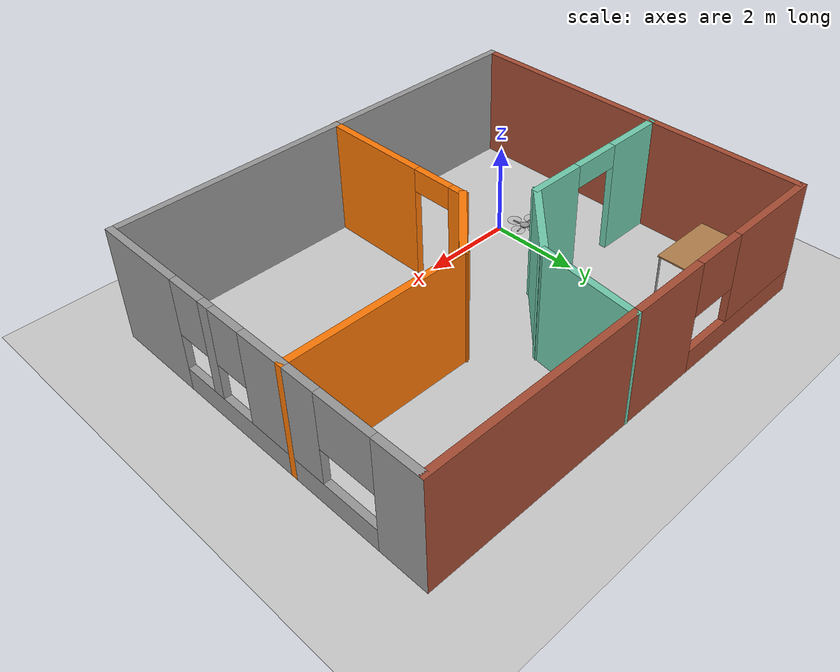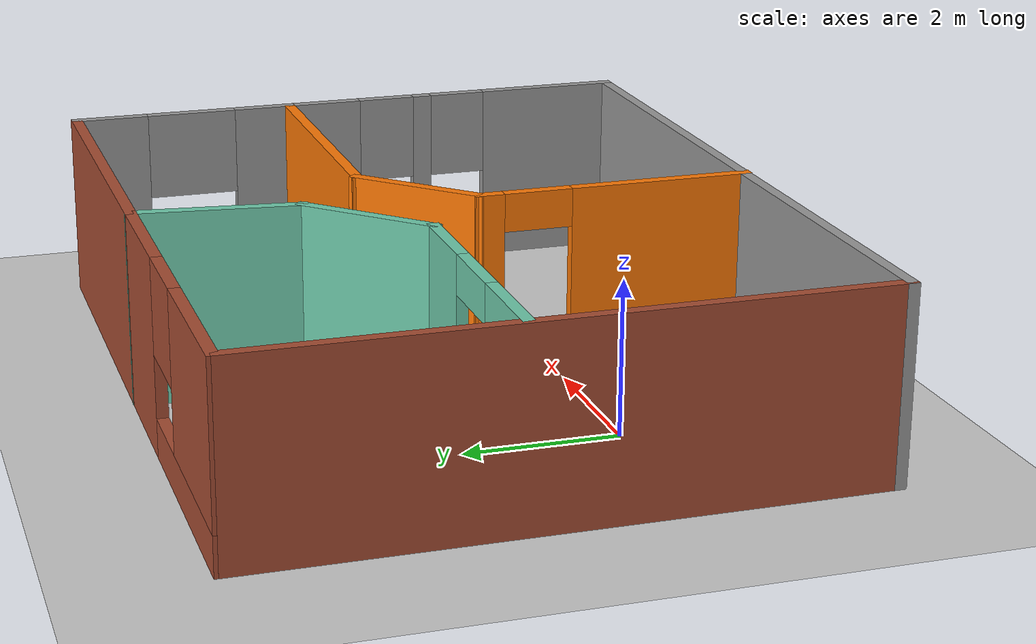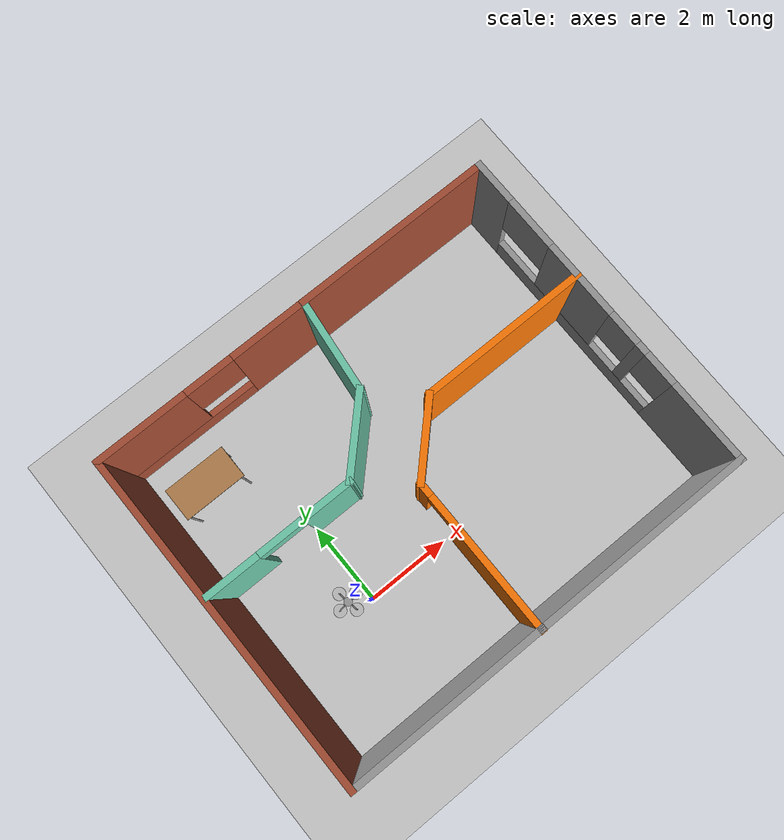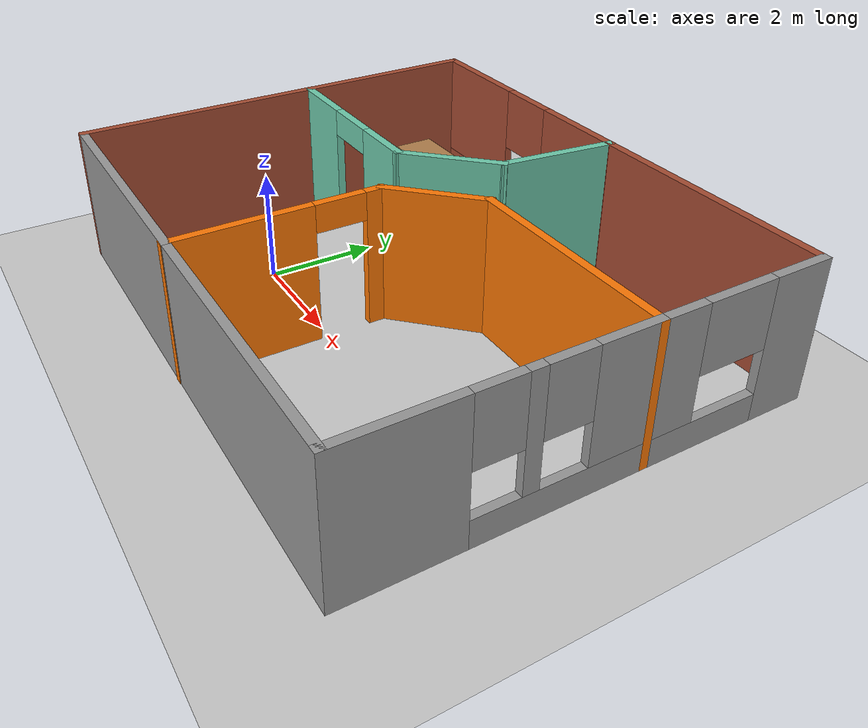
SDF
<sdf version="1.7">
 <world name="default">
  <model name="ground_plane">
   <static>1</static>
   <link name="link1">
    <collision name="collision">
     <geometry><plane><normal>0 0 1</normal><size>100 100</size></plane></geometry>
     <surface>
      <contact><collide_bitmask>65535</collide_bitmask></contact>
      <friction><ode><mu>100</mu><mu2>50</mu2></ode></friction>
     </surface>
    </collision>
    <visual name="visual">
     <cast_shadows>0</cast_shadows>
     <geometry><plane><normal>0 0 1</normal><size>100 100</size></plane></geometry>
     <material>
      <script><uri>file://media/materials/scripts/gazebo.material</uri><name>Gazebo/Grey</name></script>
     </material>
    </visual>
   </link>
  </model>
  <model name="homeofdrone">
   <pose>3.28463 1.44634 0 0 -0 0</pose>
   <link name="Wall_0">
    <pose>4.0625 -1.5234 0 0 -0 1.5708</pose>
    <visual name="Wall_0_Visual_0">
     <pose>-1.49167 0 1.25 0 -0 0</pose>
     <geometry><box><size>2.01666 0.15 2.5</size></box></geometry>
     <material>
      <script><uri>file://media/materials/scripts/gazebo.material</uri><name>Gazebo/Grey</name></script>
      <ambient>1 1 1 1</ambient>
     </material>
     <meta><layer>0</layer></meta>
    </visual>
    <collision name="Wall_0_Collision_0">
     <geometry><box><size>2.01666 0.15 2.5</size></box></geometry>
     <pose>-1.49167 0 1.25 0 -0 0</pose>
    </collision>
    <visual name="Wall_0_Visual_1">
     <pose>1.00833 0 0.25 0 -0 0</pose>
     <geometry><box><size>2.98334 0.15 0.5</size></box></geometry>
     <material>
      <script><uri>file://media/materials/scripts/gazebo.material</uri><name>Gazebo/Grey</name></script>
      <ambient>1 1 1 1</ambient>
     </material>
     <meta><layer>0</layer></meta>
    </visual>
    <collision name="Wall_0_Collision_1">
     <geometry><box><size>2.98334 0.15 0.5</size></box></geometry>
     <pose>1.00833 0 0.25 0 -0 0</pose>
    </collision>
    <visual name="Wall_0_Visual_2">
     <pose>0.452274 0 1.5 0 -0 0</pose>
     <geometry><box><size>0.271225 0.15 2</size></box></geometry>
     <material>
      <script><uri>file://media/materials/scripts/gazebo.material</uri><name>Gazebo/Grey</name></script>
      <ambient>1 1 1 1</ambient>
     </material>
     <meta><layer>0</layer></meta>
    </visual>
    <collision name="Wall_0_Collision_2">
     <geometry><box><size>0.271225 0.15 2</size></box></geometry>
     <pose>0.452274 0 1.5 0 -0 0</pose>
    </collision>
    <visual name="Wall_0_Visual_3">
     <pose>1.94394 0 1.5 0 -0 0</pose>
     <geometry><box><size>1.11211 0.15 2</size></box></geometry>
     <material>
      <script><uri>file://media/materials/scripts/gazebo.material</uri><name>Gazebo/Grey</name></script>
      <ambient>1 1 1 1</ambient>
     </material>
     <meta><layer>0</layer></meta>
    </visual>
    <collision name="Wall_0_Collision_3">
     <geometry><box><size>1.11211 0.15 2</size></box></geometry>
     <pose>1.94394 0 1.5 0 -0 0</pose>
    </collision>
    <visual name="Wall_0_Visual_4">
     <pose>-0.083338 0 1.9 0 -0 0</pose>
     <geometry><box><size>0.8 0.15 1.2</size></box></geometry>
     <material>
      <script><uri>file://media/materials/scripts/gazebo.material</uri><name>Gazebo/Grey</name></script>
      <ambient>1 1 1 1</ambient>
     </material>
     <meta><layer>0</layer></meta>
    </visual>
    <collision name="Wall_0_Collision_4">
     <geometry><box><size>0.8 0.15 1.2</size></box></geometry>
     <pose>-0.083338 0 1.9 0 -0 0</pose>
    </collision>
    <visual name="Wall_0_Visual_5">
     <pose>0.987887 0 1.9 0 -0 0</pose>
     <geometry><box><size>0.8 0.15 1.2</size></box></geometry>
     <material>
      <script><uri>file://media/materials/scripts/gazebo.material</uri><name>Gazebo/Grey</name></script>
      <ambient>1 1 1 1</ambient>
     </material>
     <meta><layer>0</layer></meta>
    </visual>
    <collision name="Wall_0_Collision_5">
     <geometry><box><size>0.8 0.15 1.2</size></box></geometry>
     <pose>0.987887 0 1.9 0 -0 0</pose>
    </collision>
   </link>
   <link name="Wall_1">
    <collision name="Wall_1_Collision">
     <geometry><box><size>4 0.15 2.5</size></box></geometry>
     <pose>0 0 1.25 0 -0 0</pose>
    </collision>
    <visual name="Wall_1_Visual">
     <pose>0 0 1.25 0 -0 0</pose>
     <geometry><box><size>4 0.15 2.5</size></box></geometry>
     <material>
      <script><uri>file://media/materials/scripts/gazebo.material</uri><name>Gazebo/Grey</name></script>
      <ambient>0.996078 0.47451 0.0196078 1</ambient>
     </material>
     <meta><layer>0</layer></meta>
    </visual>
    <pose>2.1375 0.901605 0 0 -0 3.14159</pose>
   </link>
   <link name="Wall_11">
    <collision name="Wall_11_Collision">
     <geometry><box><size>4.75 0.15 2.5</size></box></geometry>
     <pose>0 0 1.25 0 -0 0</pose>
    </collision>
    <visual name="Wall_11_Visual">
     <pose>0 0 1.25 0 -0 0</pose>
     <geometry><box><size>4.75 0.15 2.5</size></box></geometry>
     <material>
      <script><uri>file://media/materials/scripts/gazebo.material</uri><name>Gazebo/Bricks</name></script>
      <ambient>1 1 1 1</ambient>
     </material>
     <meta><layer>0</layer></meta>
    </visual>
    <pose>1.7625 3.9516 0 0 -0 0</pose>
   </link>
   <link name="Wall_12">
    <pose>4.0625 2.4266 0 0 -0 -1.5708</pose>
    <visual name="Wall_12_Visual_0">
     <pose>-1.06575 0 1.25 0 -0 0</pose>
     <geometry><box><size>1.06814 0.15 2.5</size></box></geometry>
     <material>
      <script><uri>file://media/materials/scripts/gazebo.material</uri><name>Gazebo/Grey</name></script>
      <ambient>1 1 1 1</ambient>
     </material>
     <meta><layer>0</layer></meta>
    </visual>
    <collision name="Wall_12_Collision_0">
     <geometry><box><size>1.06814 0.15 2.5</size></box></geometry>
     <pose>-1.06575 0 1.25 0 -0 0</pose>
    </collision>
    <visual name="Wall_12_Visual_1">
     <pose>0.534068 0 0.25 0 -0 0</pose>
     <geometry><box><size>2.13151 0.15 0.5</size></box></geometry>
     <material>
      <script><uri>file://media/materials/scripts/gazebo.material</uri><name>Gazebo/Grey</name></script>
      <ambient>1 1 1 1</ambient>
     </material>
     <meta><layer>0</layer></meta>
    </visual>
    <collision name="Wall_12_Collision_1">
     <geometry><box><size>2.13151 0.15 0.5</size></box></geometry>
     <pose>0.534068 0 0.25 0 -0 0</pose>
    </collision>
    <visual name="Wall_12_Visual_2">
     <pose>1.15889 0 1.5 0 -0 0</pose>
     <geometry><box><size>0.881856 0.15 2</size></box></geometry>
     <material>
      <script><uri>file://media/materials/scripts/gazebo.material</uri><name>Gazebo/Grey</name></script>
      <ambient>1 1 1 1</ambient>
     </material>
     <meta><layer>0</layer></meta>
    </visual>
    <collision name="Wall_12_Collision_2">
     <geometry><box><size>0.881856 0.15 2</size></box></geometry>
     <pose>1.15889 0 1.5 0 -0 0</pose>
    </collision>
    <visual name="Wall_12_Visual_3">
     <pose>0.093139 0 1.9 0 -0 0</pose>
     <geometry><box><size>1.24965 0.15 1.2</size></box></geometry>
     <material>
      <script><uri>file://media/materials/scripts/gazebo.material</uri><name>Gazebo/Grey</name></script>
      <ambient>1 1 1 1</ambient>
     </material>
     <meta><layer>0</layer></meta>
    </visual>
    <collision name="Wall_12_Collision_3">
     <geometry><box><size>1.24965 0.15 1.2</size></box></geometry>
     <pose>0.093139 0 1.9 0 -0 0</pose>
    </collision>
   </link>
   <link name="Wall_14">
    <collision name="Wall_14_Collision">
     <geometry><box><size>4.75 0.15 2.5</size></box></geometry>
     <pose>0 0 1.25 0 -0 0</pose>
    </collision>
    <visual name="Wall_14_Visual">
     <pose>0 0 1.25 0 -0 0</pose>
     <geometry><box><size>4.75 0.15 2.5</size></box></geometry>
     <material>
      <script><uri>file://media/materials/scripts/gazebo.material</uri><name>Gazebo/Grey</name></script>
      <ambient>1 1 1 1</ambient>
     </material>
     <meta><layer>0</layer></meta>
    </visual>
    <pose>-3.3375 -3.9484 0 0 -0 3.14159</pose>
   </link>
   <link name="Wall_15">
    <collision name="Wall_15_Collision">
     <geometry><box><size>8 0.15 2.5</size></box></geometry>
     <pose>0 0 1.25 0 -0 0</pose>
    </collision>
    <visual name="Wall_15_Visual">
     <pose>0 0 1.25 0 -0 0</pose>
     <geometry><box><size>8 0.15 2.5</size></box></geometry>
     <material>
      <script><uri>file://media/materials/scripts/gazebo.material</uri><name>Gazebo/Bricks</name></script>
      <ambient>1 1 1 1</ambient>
     </material>
     <meta><layer>0</layer></meta>
    </visual>
    <pose>-5.6375 -0.023395 0 0 -0 1.5708</pose>
   </link>
   <link name="Wall_17">
    <pose>-3.0875 3.9516 0 0 -0 3.14159</pose>
    <visual name="Wall_17_Visual_0">
     <pose>-1.68198 0 1.25 0 -0 0</pose>
     <geometry><box><size>1.88603 0.15 2.5</size></box></geometry>
     <material>
      <script><uri>file://media/materials/scripts/gazebo.material</uri><name>Gazebo/Bricks</name></script>
      <ambient>1 1 1 1</ambient>
     </material>
     <meta><layer>0</layer></meta>
    </visual>
    <collision name="Wall_17_Collision_0">
     <geometry><box><size>1.88603 0.15 2.5</size></box></geometry>
     <pose>-1.68198 0 1.25 0 -0 0</pose>
    </collision>
    <visual name="Wall_17_Visual_1">
     <pose>0.943016 0 0.25 0 -0 0</pose>
     <geometry><box><size>3.36397 0.15 0.5</size></box></geometry>
     <material>
      <script><uri>file://media/materials/scripts/gazebo.material</uri><name>Gazebo/Bricks</name></script>
      <ambient>1 1 1 1</ambient>
     </material>
     <meta><layer>0</layer></meta>
    </visual>
    <collision name="Wall_17_Collision_1">
     <geometry><box><size>3.36397 0.15 0.5</size></box></geometry>
     <pose>0.943016 0 0.25 0 -0 0</pose>
    </collision>
    <visual name="Wall_17_Visual_2">
     <pose>1.51792 0 1.5 0 -0 0</pose>
     <geometry><box><size>2.21417 0.15 2</size></box></geometry>
     <material>
      <script><uri>file://media/materials/scripts/gazebo.material</uri><name>Gazebo/Bricks</name></script>
      <ambient>1 1 1 1</ambient>
     </material>
     <meta><layer>0</layer></meta>
    </visual>
    <collision name="Wall_17_Collision_2">
     <geometry><box><size>2.21417 0.15 2</size></box></geometry>
     <pose>1.51792 0 1.5 0 -0 0</pose>
    </collision>
    <visual name="Wall_17_Visual_3">
     <pose>-0.164067 0 1.9 0 -0 0</pose>
     <geometry><box><size>1.1498 0.15 1.2</size></box></geometry>
     <material>
      <script><uri>file://media/materials/scripts/gazebo.material</uri><name>Gazebo/Bricks</name></script>
      <ambient>1 1 1 1</ambient>
     </material>
     <meta><layer>0</layer></meta>
    </visual>
    <collision name="Wall_17_Collision_3">
     <geometry><box><size>1.1498 0.15 1.2</size></box></geometry>
     <pose>-0.164067 0 1.9 0 -0 0</pose>
    </collision>
   </link>
   <link name="Wall_19">
    <pose>-3.8385 0.542605 0 0 -0 3.14159</pose>
    <visual name="Wall_19_Visual_0">
     <pose>-1.20564 0 1.25 0 -0 0</pose>
     <geometry><box><size>1.23672 0.15 2.5</size></box></geometry>
     <material>
      <script><uri>file://media/materials/scripts/gazebo.material</uri><name>Gazebo/Grey</name></script>
      <ambient>0.435294 0.796078 0.67451 1</ambient>
     </material>
     <meta><layer>0</layer></meta>
    </visual>
    <collision name="Wall_19_Collision_0">
     <geometry><box><size>1.23672 0.15 2.5</size></box></geometry>
     <pose>-1.20564 0 1.25 0 -0 0</pose>
    </collision>
    <visual name="Wall_19_Visual_1">
     <pose>1.15581 0 1.25 0 -0 0</pose>
     <geometry><box><size>1.33638 0.15 2.5</size></box></geometry>
     <material>
      <script><uri>file://media/materials/scripts/gazebo.material</uri><name>Gazebo/Grey</name></script>
      <ambient>0.435294 0.796078 0.67451 1</ambient>
     </material>
     <meta><layer>0</layer></meta>
    </visual>
    <collision name="Wall_19_Collision_1">
     <geometry><box><size>1.33638 0.15 2.5</size></box></geometry>
     <pose>1.15581 0 1.25 0 -0 0</pose>
    </collision>
    <visual name="Wall_19_Visual_2">
     <pose>-0.049827 0 2.25 0 -0 0</pose>
     <geometry><box><size>1.0749 0.15 0.5</size></box></geometry>
     <material>
      <script><uri>file://media/materials/scripts/gazebo.material</uri><name>Gazebo/Grey</name></script>
      <ambient>0.435294 0.796078 0.67451 1</ambient>
     </material>
     <meta><layer>0</layer></meta>
    </visual>
    <collision name="Wall_19_Collision_2">
     <geometry><box><size>1.0749 0.15 0.5</size></box></geometry>
     <pose>-0.049827 0 2.25 0 -0 0</pose>
    </collision>
   </link>
   <link name="Wall_2">
    <collision name="Wall_2_Collision">
     <geometry><box><size>1.93385 0.15 2.5</size></box></geometry>
     <pose>0 0 1.25 0 -0 0</pose>
    </collision>
    <visual name="Wall_2_Visual">
     <pose>0 0 1.25 0 -0 0</pose>
     <geometry><box><size>1.93385 0.15 2.5</size></box></geometry>
     <material>
      <script><uri>file://media/materials/scripts/gazebo.material</uri><name>Gazebo/Grey</name></script>
      <ambient>0.996078 0.47451 0.0196078 1</ambient>
     </material>
     <meta><layer>0</layer></meta>
    </visual>
    <pose>-0.418185 0.270919 0 0 -0 -2.35619</pose>
   </link>
   <link name="Wall_3">
    <pose>-1.04887 -2.15977 0 0 -0 -1.5708</pose>
    <visual name="Wall_3_Visual_0">
     <pose>-1.68177 0 1.25 0 -0 0</pose>
     <geometry><box><size>0.386458 0.15 2.5</size></box></geometry>
     <material>
      <script><uri>file://media/materials/scripts/gazebo.material</uri><name>Gazebo/Grey</name></script>
      <ambient>0.996078 0.47451 0.0196078 1</ambient>
     </material>
     <meta><layer>0</layer></meta>
    </visual>
    <collision name="Wall_3_Collision_0">
     <geometry><box><size>0.386458 0.15 2.5</size></box></geometry>
     <pose>-1.68177 0 1.25 0 -0 0</pose>
    </collision>
    <visual name="Wall_3_Visual_1">
     <pose>0.643229 0 1.25 0 -0 0</pose>
     <geometry><box><size>2.46354 0.15 2.5</size></box></geometry>
     <material>
      <script><uri>file://media/materials/scripts/gazebo.material</uri><name>Gazebo/Grey</name></script>
      <ambient>0.996078 0.47451 0.0196078 1</ambient>
     </material>
     <meta><layer>0</layer></meta>
    </visual>
    <collision name="Wall_3_Collision_1">
     <geometry><box><size>2.46354 0.15 2.5</size></box></geometry>
     <pose>0.643229 0 1.25 0 -0 0</pose>
    </collision>
    <visual name="Wall_3_Visual_2">
     <pose>-1.03854 0 2.25 0 -0 0</pose>
     <geometry><box><size>0.9 0.15 0.5</size></box></geometry>
     <material>
      <script><uri>file://media/materials/scripts/gazebo.material</uri><name>Gazebo/Grey</name></script>
      <ambient>0.996078 0.47451 0.0196078 1</ambient>
     </material>
     <meta><layer>0</layer></meta>
    </visual>
    <collision name="Wall_3_Collision_2">
     <geometry><box><size>0.9 0.15 0.5</size></box></geometry>
     <pose>-1.03854 0 2.25 0 -0 0</pose>
    </collision>
   </link>
   <link name="Wall_5">
    <collision name="Wall_5_Collision">
     <geometry><box><size>5.25 0.15 2.5</size></box></geometry>
     <pose>0 0 1.25 0 -0 0</pose>
    </collision>
    <visual name="Wall_5_Visual">
     <pose>0 0 1.25 0 -0 0</pose>
     <geometry><box><size>5.25 0.15 2.5</size></box></geometry>
     <material>
      <script><uri>file://media/materials/scripts/gazebo.material</uri><name>Gazebo/Grey</name></script>
      <ambient>1 1 1 1</ambient>
     </material>
     <meta><layer>0</layer></meta>
    </visual>
    <pose>1.5125 -3.9484 0 0 -0 3.14159</pose>
   </link>
   <link name="Wall_8">
    <collision name="Wall_8_Collision">
     <geometry><box><size>2 0.15 2.5</size></box></geometry>
     <pose>0 0 1.25 0 -0 0</pose>
    </collision>
    <visual name="Wall_8_Visual">
     <pose>0 0 1.25 0 -0 0</pose>
     <geometry><box><size>2 0.15 2.5</size></box></geometry>
     <material>
      <script><uri>file://media/materials/scripts/gazebo.material</uri><name>Gazebo/Grey</name></script>
      <ambient>0.435294 0.796078 0.67451 1</ambient>
     </material>
     <meta><layer>0</layer></meta>
    </visual>
    <pose>-1.43563 1.19688 0 0 -0 0.785708</pose>
   </link>
   <link name="Wall_9">
    <collision name="Wall_9_Collision">
     <geometry><box><size>2.26461 0.15 2.5</size></box></geometry>
     <pose>0 0 1.25 0 -0 0</pose>
    </collision>
    <visual name="Wall_9_Visual">
     <pose>0 0 1.25 0 -0 0</pose>
     <geometry><box><size>2.26461 0.15 2.5</size></box></geometry>
     <material>
      <script><uri>file://media/materials/scripts/gazebo.material</uri><name>Gazebo/Grey</name></script>
      <ambient>0.435294 0.796078 0.67451 1</ambient>
     </material>
     <meta><layer>0</layer></meta>
    </visual>
    <pose>-0.659634 2.90137 0 0 -0 1.45502</pose>
   </link>
   <static>1</static>
  </model>
  <model name="table_0">
   <static>1</static>
   <link name="link12">
    <collision name="surface">
     <pose>0 0 1 0 -0 0</pose>
     <geometry><box><size>1.5 0.8 0.03</size></box></geometry>
     <surface><friction><ode><mu>0.6</mu><mu2>0.6</mu2></ode></friction></surface>
    </collision>
    <visual name="visual1">
     <pose>0 0 1 0 -0 0</pose>
     <geometry><box><size>1.5 0.8 0.03</size></box></geometry>
     <material>
      <script><uri>file://media/materials/scripts/gazebo.material</uri><name>Gazebo/Wood</name></script>
     </material>
    </visual>
    <collision name="front_left_leg20">
     <pose>0.68 0.38 0.5 0 -0 0</pose>
     <geometry><cylinder><radius>0.02</radius><length>1</length></cylinder></geometry>
    </collision>
    <visual name="front_left_leg21">
     <pose>0.68 0.38 0.5 0 -0 0</pose>
     <geometry><cylinder><radius>0.02</radius><length>1</length></cylinder></geometry>
     <material>
      <script><uri>file://media/materials/scripts/gazebo.material</uri><name>Gazebo/Grey</name></script>
     </material>
    </visual>
    <collision name="front_right_leg23">
     <pose>0.68 -0.38 0.5 0 -0 0</pose>
     <geometry><cylinder><radius>0.02</radius><length>1</length></cylinder></geometry>
    </collision>
    <visual name="front_right_leg24">
     <pose>0.68 -0.38 0.5 0 -0 0</pose>
     <geometry><cylinder><radius>0.02</radius><length>1</length></cylinder></geometry>
     <material>
      <script><uri>file://media/materials/scripts/gazebo.material</uri><name>Gazebo/Grey</name></script>
     </material>
    </visual>
    <collision name="back_right_leg25">
     <pose>-0.68 -0.38 0.5 0 -0 0</pose>
     <geometry><cylinder><radius>0.02</radius><length>1</length></cylinder></geometry>
    </collision>
    <visual name="back_right_leg26">
     <pose>-0.68 -0.38 0.5 0 -0 0</pose>
     <geometry><cylinder><radius>0.02</radius><length>1</length></cylinder></geometry>
     <material>
      <script><uri>file://media/materials/scripts/gazebo.material</uri><name>Gazebo/Grey</name></script>
     </material>
    </visual>
    <collision name="back_left_leg10">
     <pose>-0.68 0.38 0.5 0 -0 0</pose>
     <geometry><cylinder><radius>0.02</radius><length>1</length></cylinder></geometry>
    </collision>
    <visual name="back_left_leg11">
     <pose>-0.68 0.38 0.5 0 -0 0</pose>
     <geometry><cylinder><radius>0.02</radius><length>1</length></cylinder></geometry>
     <material>
      <script><uri>file://media/materials/scripts/gazebo.material</uri><name>Gazebo/Grey</name></script>
     </material>
    </visual>
   </link>
   <pose>-1.17476 4.13564 0 0 -0 0</pose>
  </model>
  <model name="quadrocopter_clone">
   <link name="link_0">
    <inertial>
     <mass>1.10741</mass>
     <inertia>
      <ixx>0.00285158</ixx>
      <ixy>0</ixy>
      <ixz>0</ixz>
      <iyy>0.00285158</iyy>
      <iyz>0</iyz>
      <izz>0.00553706</izz>
     </inertia>
    </inertial>
    <pose>0.00067 0.037339 -0.008889 0 -0 0</pose>
    <visual name="visual">
     <geometry><cylinder><radius>0.1</radius><length>0.03</length></cylinder></geometry>
     <material>
      <lighting>1</lighting>
      <script><uri>file://media/materials/scripts/gazebo.material</uri><name>Gazebo/Grey</name></script>
      <shader type="pixel"><normal_map>__default__</normal_map></shader>
      <ambient>0.3 0.3 0.3 1</ambient>
      <diffuse>0.7 0.7 0.7 1</diffuse>
      <specular>0.01 0.01 0.01 1</specular>
      <emissive>0 0 0 1</emissive>
     </material>
    </visual>
    <collision name="collision">
     <geometry><cylinder><radius>0.1</radius><length>0.03</length></cylinder></geometry>
     <surface>
      <friction>
       <ode><mu>1</mu><mu2>1</mu2><fdir1>0 0 0</fdir1><slip1>0</slip1><slip2>0</slip2></ode>
       <torsional>
        <coefficient>1</coefficient>
        <patch_radius>0</patch_radius>
        <surface_radius>0</surface_radius>
        <use_patch_radius>1</use_patch_radius>
        <ode><slip>0</slip></ode>
       </torsional>
      </friction>
      <bounce><restitution_coefficient>0</restitution_coefficient><threshold>1e+06</threshold></bounce>
      <contact>
       <collide_without_contact>0</collide_without_contact>
       <collide_without_contact_bitmask>1</collide_without_contact_bitmask>
       <collide_bitmask>1</collide_bitmask>
       <ode>
        <soft_cfm>0</soft_cfm>
        <soft_erp>0.2</soft_erp>
        <kp>1e+13</kp>
        <kd>1</kd>
        <max_vel>0.01</max_vel>
        <min_depth>0</min_depth>
       </ode>
       <bullet>
        <split_impulse>1</split_impulse>
        <split_impulse_penetration_threshold>-0.01</split_impulse_penetration_threshold>
        <soft_cfm>0</soft_cfm>
        <soft_erp>0.2</soft_erp>
        <kp>1e+13</kp>
        <kd>1</kd>
       </bullet>
      </contact>
     </surface>
    </collision>
   </link>
   <link name="link_0_clone">
    <inertial>
     <mass>1.10741</mass>
     <inertia>
      <ixx>0.00285158</ixx>
      <ixy>0</ixy>
      <ixz>0</ixz>
      <iyy>0.00285158</iyy>
      <iyz>0</iyz>
      <izz>0.00553706</izz>
     </inertia>
    </inertial>
    <pose>0.00067 -0.222661 0.011111 0 -0 0</pose>
    <visual name="visual">
     <geometry><cylinder><radius>0.15</radius><length>0.01</length></cylinder></geometry>
     <material>
      <lighting>1</lighting>
      <script><uri>file://media/materials/scripts/gazebo.material</uri><name>Gazebo/Grey</name></script>
      <shader type="pixel"><normal_map>__default__</normal_map></shader>
      <ambient>0.1 0.1 0.1 1</ambient>
      <diffuse>0.7 0.7 0.7 1</diffuse>
      <specular>0.01 0.01 0.01 1</specular>
      <emissive>0 0 0 1</emissive>
     </material>
     <transparency>0.9</transparency>
    </visual>
    <collision name="collision">
     <geometry><cylinder><radius>0.15</radius><length>0.01</length></cylinder></geometry>
     <surface>
      <friction>
       <ode><mu>1</mu><mu2>1</mu2><fdir1>0 0 0</fdir1><slip1>0</slip1><slip2>0</slip2></ode>
       <torsional>
        <coefficient>1</coefficient>
        <patch_radius>0</patch_radius>
        <surface_radius>0</surface_radius>
        <use_patch_radius>1</use_patch_radius>
        <ode><slip>0</slip></ode>
       </torsional>
      </friction>
      <bounce><restitution_coefficient>0</restitution_coefficient><threshold>1e+06</threshold></bounce>
      <contact>
       <collide_without_contact>0</collide_without_contact>
       <collide_without_contact_bitmask>1</collide_without_contact_bitmask>
       <collide_bitmask>1</collide_bitmask>
       <ode>
        <soft_cfm>0</soft_cfm>
        <soft_erp>0.2</soft_erp>
        <kp>1e+13</kp>
        <kd>1</kd>
        <max_vel>0.01</max_vel>
        <min_depth>0</min_depth>
       </ode>
       <bullet>
        <split_impulse>1</split_impulse>
        <split_impulse_penetration_threshold>-0.01</split_impulse_penetration_threshold>
        <soft_cfm>0</soft_cfm>
        <soft_erp>0.2</soft_erp>
        <kp>1e+13</kp>
        <kd>1</kd>
       </bullet>
      </contact>
     </surface>
    </collision>
   </link>
   <link name="link_0_clone_clone">
    <inertial>
     <mass>1.10741</mass>
     <inertia>
      <ixx>0.00285158</ixx>
      <ixy>0</ixy>
      <ixz>0</ixz>
      <iyy>0.00285158</iyy>
      <iyz>0</iyz>
      <izz>0.00553706</izz>
     </inertia>
    </inertial>
    <pose>-0.25933 0.037339 0.011111 0 -0 0</pose>
    <visual name="visual">
     <geometry><cylinder><radius>0.15</radius><length>0.01</length></cylinder></geometry>
     <material>
      <lighting>1</lighting>
      <script><uri>file://media/materials/scripts/gazebo.material</uri><name>Gazebo/Grey</name></script>
      <shader type="pixel"><normal_map>__default__</normal_map></shader>
      <ambient>0.1 0.1 0.1 1</ambient>
      <diffuse>0.7 0.7 0.7 1</diffuse>
      <specular>0.01 0.01 0.01 1</specular>
      <emissive>0 0 0 1</emissive>
     </material>
     <transparency>0.9</transparency>
    </visual>
    <collision name="collision">
     <geometry><cylinder><radius>0.15</radius><length>0.01</length></cylinder></geometry>
     <surface>
      <friction>
       <ode><mu>1</mu><mu2>1</mu2><fdir1>0 0 0</fdir1><slip1>0</slip1><slip2>0</slip2></ode>
       <torsional>
        <coefficient>1</coefficient>
        <patch_radius>0</patch_radius>
        <surface_radius>0</surface_radius>
        <use_patch_radius>1</use_patch_radius>
        <ode><slip>0</slip></ode>
       </torsional>
      </friction>
      <bounce><restitution_coefficient>0</restitution_coefficient><threshold>1e+06</threshold></bounce>
      <contact>
       <collide_without_contact>0</collide_without_contact>
       <collide_without_contact_bitmask>1</collide_without_contact_bitmask>
       <collide_bitmask>1</collide_bitmask>
       <ode>
        <soft_cfm>0</soft_cfm>
        <soft_erp>0.2</soft_erp>
        <kp>1e+13</kp>
        <kd>1</kd>
        <max_vel>0.01</max_vel>
        <min_depth>0</min_depth>
       </ode>
       <bullet>
        <split_impulse>1</split_impulse>
        <split_impulse_penetration_threshold>-0.01</split_impulse_penetration_threshold>
        <soft_cfm>0</soft_cfm>
        <soft_erp>0.2</soft_erp>
        <kp>1e+13</kp>
        <kd>1</kd>
       </bullet>
      </contact>
     </surface>
    </collision>
   </link>
   <link name="link_0_clone_clone_0">
    <inertial>
     <mass>1.10741</mass>
     <inertia>
      <ixx>0.00285158</ixx>
      <ixy>0</ixy>
      <ixz>0</ixz>
      <iyy>0.00285158</iyy>
      <iyz>0</iyz>
      <izz>0.00553706</izz>
     </inertia>
    </inertial>
    <pose>0.00067 0.297339 0.011111 0 -0 0</pose>
    <visual name="visual">
     <geometry><cylinder><radius>0.15</radius><length>0.01</length></cylinder></geometry>
     <material>
      <lighting>1</lighting>
      <script><uri>file://media/materials/scripts/gazebo.material</uri><name>Gazebo/Grey</name></script>
      <shader type="pixel"><normal_map>__default__</normal_map></shader>
      <ambient>0.1 0.1 0.1 1</ambient>
      <diffuse>0.7 0.7 0.7 1</diffuse>
      <specular>0.01 0.01 0.01 1</specular>
      <emissive>0 0 0 1</emissive>
     </material>
     <transparency>0.9</transparency>
    </visual>
    <collision name="collision">
     <geometry><cylinder><radius>0.15</radius><length>0.01</length></cylinder></geometry>
     <surface>
      <friction>
       <ode><mu>1</mu><mu2>1</mu2><fdir1>0 0 0</fdir1><slip1>0</slip1><slip2>0</slip2></ode>
       <torsional>
        <coefficient>1</coefficient>
        <patch_radius>0</patch_radius>
        <surface_radius>0</surface_radius>
        <use_patch_radius>1</use_patch_radius>
        <ode><slip>0</slip></ode>
       </torsional>
      </friction>
      <bounce><restitution_coefficient>0</restitution_coefficient><threshold>1e+06</threshold></bounce>
      <contact>
       <collide_without_contact>0</collide_without_contact>
       <collide_without_contact_bitmask>1</collide_without_contact_bitmask>
       <collide_bitmask>1</collide_bitmask>
       <ode>
        <soft_cfm>0</soft_cfm>
        <soft_erp>0.2</soft_erp>
        <kp>1e+13</kp>
        <kd>1</kd>
        <max_vel>0.01</max_vel>
        <min_depth>0</min_depth>
       </ode>
       <bullet>
        <split_impulse>1</split_impulse>
        <split_impulse_penetration_threshold>-0.01</split_impulse_penetration_threshold>
        <soft_cfm>0</soft_cfm>
        <soft_erp>0.2</soft_erp>
        <kp>1e+13</kp>
        <kd>1</kd>
       </bullet>
      </contact>
     </surface>
    </collision>
   </link>
   <link name="link_0_clone_clone_1">
    <inertial>
     <mass>1.10741</mass>
     <inertia>
      <ixx>0.00285158</ixx>
      <ixy>0</ixy>
      <ixz>0</ixz>
      <iyy>0.00285158</iyy>
      <iyz>0</iyz>
      <izz>0.00553706</izz>
     </inertia>
    </inertial>
    <pose>0.26067 0.037339 0.011111 0 -0 0</pose>
    <visual name="visual">
     <geometry><cylinder><radius>0.15</radius><length>0.01</length></cylinder></geometry>
     <material>
      <lighting>1</lighting>
      <script><uri>file://media/materials/scripts/gazebo.material</uri><name>Gazebo/Grey</name></script>
      <shader type="pixel"><normal_map>__default__</normal_map></shader>
      <ambient>0.1 0.1 0.1 1</ambient>
      <diffuse>0.7 0.7 0.7 1</diffuse>
      <specular>0.01 0.01 0.01 1</specular>
      <emissive>0 0 0 1</emissive>
     </material>
     <transparency>0.9</transparency>
    </visual>
    <collision name="collision">
     <geometry><cylinder><radius>0.15</radius><length>0.01</length></cylinder></geometry>
     <surface>
      <friction>
       <ode><mu>1</mu><mu2>1</mu2><fdir1>0 0 0</fdir1><slip1>0</slip1><slip2>0</slip2></ode>
       <torsional>
        <coefficient>1</coefficient>
        <patch_radius>0</patch_radius>
        <surface_radius>0</surface_radius>
        <use_patch_radius>1</use_patch_radius>
        <ode><slip>0</slip></ode>
       </torsional>
      </friction>
      <bounce><restitution_coefficient>0</restitution_coefficient><threshold>1e+06</threshold></bounce>
      <contact>
       <collide_without_contact>0</collide_without_contact>
       <collide_without_contact_bitmask>1</collide_without_contact_bitmask>
       <collide_bitmask>1</collide_bitmask>
       <ode>
        <soft_cfm>0</soft_cfm>
        <soft_erp>0.2</soft_erp>
        <kp>1e+13</kp>
        <kd>1</kd>
        <max_vel>0.01</max_vel>
        <min_depth>0</min_depth>
       </ode>
       <bullet>
        <split_impulse>1</split_impulse>
        <split_impulse_penetration_threshold>-0.01</split_impulse_penetration_threshold>
        <soft_cfm>0</soft_cfm>
        <soft_erp>0.2</soft_erp>
        <kp>1e+13</kp>
        <kd>1</kd>
       </bullet>
      </contact>
     </surface>
    </collision>
   </link>
   <link name="link_1">
    <inertial>
     <mass>1</mass>
     <inertia><ixx>0.145833</ixx><ixy>0</ixy><ixz>0</ixz><iyy>0.145833</iyy><iyz>0</iyz><izz>0.125</izz></inertia>
    </inertial>
    <pose>0.00067 0.217339 -0.008889 0 -0 0</pose>
    <visual name="visual">
     <pose>0 0 0 1.5708 -0 0</pose>
     <geometry><cylinder><radius>0.015</radius><length>0.2</length></cylinder></geometry>
     <material>
      <lighting>1</lighting>
      <script><uri>file://media/materials/scripts/gazebo.material</uri><name>Gazebo/Grey</name></script>
      <shader type="pixel"><normal_map>__default__</normal_map></shader>
      <ambient>0.3 0.3 0.3 1</ambient>
      <diffuse>0.7 0.7 0.7 1</diffuse>
      <specular>0.01 0.01 0.01 1</specular>
      <emissive>0 0 0 1</emissive>
     </material>
    </visual>
    <collision name="collision">
     <pose>0 0 0 1.5708 -0 0</pose>
     <geometry><cylinder><radius>0.015</radius><length>0.2</length></cylinder></geometry>
     <surface>
      <friction>
       <ode><mu>1</mu><mu2>1</mu2><fdir1>0 0 0</fdir1><slip1>0</slip1><slip2>0</slip2></ode>
       <torsional>
        <coefficient>1</coefficient>
        <patch_radius>0</patch_radius>
        <surface_radius>0</surface_radius>
        <use_patch_radius>1</use_patch_radius>
        <ode><slip>0</slip></ode>
       </torsional>
      </friction>
      <bounce><restitution_coefficient>0</restitution_coefficient><threshold>1e+06</threshold></bounce>
      <contact>
       <collide_without_contact>0</collide_without_contact>
       <collide_without_contact_bitmask>1</collide_without_contact_bitmask>
       <collide_bitmask>1</collide_bitmask>
       <ode>
        <soft_cfm>0</soft_cfm>
        <soft_erp>0.2</soft_erp>
        <kp>1e+13</kp>
        <kd>1</kd>
        <max_vel>0.01</max_vel>
        <min_depth>0</min_depth>
       </ode>
       <bullet>
        <split_impulse>1</split_impulse>
        <split_impulse_penetration_threshold>-0.01</split_impulse_penetration_threshold>
        <soft_cfm>0</soft_cfm>
        <soft_erp>0.2</soft_erp>
        <kp>1e+13</kp>
        <kd>1</kd>
       </bullet>
      </contact>
     </surface>
    </collision>
   </link>
   <link name="link_1_clone">
    <inertial>
     <mass>1</mass>
     <inertia><ixx>0.145833</ixx><ixy>0</ixy><ixz>0</ixz><iyy>0.145833</iyy><iyz>0</iyz><izz>0.125</izz></inertia>
    </inertial>
    <pose>0.00067 -0.142661 -0.008889 0 -0 0</pose>
    <visual name="visual">
     <pose>0 0 0 1.5708 -0 0</pose>
     <geometry><cylinder><radius>0.015</radius><length>0.2</length></cylinder></geometry>
     <material>
      <lighting>1</lighting>
      <script><uri>file://media/materials/scripts/gazebo.material</uri><name>Gazebo/Grey</name></script>
      <shader type="pixel"><normal_map>__default__</normal_map></shader>
      <ambient>0.3 0.3 0.3 1</ambient>
      <diffuse>0.7 0.7 0.7 1</diffuse>
      <specular>0.01 0.01 0.01 1</specular>
      <emissive>0 0 0 1</emissive>
     </material>
    </visual>
    <collision name="collision">
     <pose>0 0 0 1.5708 -0 0</pose>
     <geometry><cylinder><radius>0.015</radius><length>0.2</length></cylinder></geometry>
     <surface>
      <friction>
       <ode><mu>1</mu><mu2>1</mu2><fdir1>0 0 0</fdir1><slip1>0</slip1><slip2>0</slip2></ode>
       <torsional>
        <coefficient>1</coefficient>
        <patch_radius>0</patch_radius>
        <surface_radius>0</surface_radius>
        <use_patch_radius>1</use_patch_radius>
        <ode><slip>0</slip></ode>
       </torsional>
      </friction>
      <bounce><restitution_coefficient>0</restitution_coefficient><threshold>1e+06</threshold></bounce>
      <contact>
       <collide_without_contact>0</collide_without_contact>
       <collide_without_contact_bitmask>1</collide_without_contact_bitmask>
       <collide_bitmask>1</collide_bitmask>
       <ode>
        <soft_cfm>0</soft_cfm>
        <soft_erp>0.2</soft_erp>
        <kp>1e+13</kp>
        <kd>1</kd>
        <max_vel>0.01</max_vel>
        <min_depth>0</min_depth>
       </ode>
       <bullet>
        <split_impulse>1</split_impulse>
        <split_impulse_penetration_threshold>-0.01</split_impulse_penetration_threshold>
        <soft_cfm>0</soft_cfm>
        <soft_erp>0.2</soft_erp>
        <kp>1e+13</kp>
        <kd>1</kd>
       </bullet>
      </contact>
     </surface>
    </collision>
   </link>
   <link name="link_1_clone_clone">
    <inertial>
     <mass>1</mass>
     <inertia><ixx>0.145833</ixx><ixy>0</ixy><ixz>0</ixz><iyy>0.145833</iyy><iyz>0</iyz><izz>0.125</izz></inertia>
    </inertial>
    <pose>-0.17933 0.037339 -0.008889 0 -0 0</pose>
    <visual name="visual">
     <pose>0 0 0 1.5708 -0 1.5708</pose>
     <geometry><cylinder><radius>0.015</radius><length>0.2</length></cylinder></geometry>
     <material>
      <lighting>1</lighting>
      <script><uri>file://media/materials/scripts/gazebo.material</uri><name>Gazebo/Grey</name></script>
      <shader type="pixel"><normal_map>__default__</normal_map></shader>
      <ambient>0.3 0.3 0.3 1</ambient>
      <diffuse>0.7 0.7 0.7 1</diffuse>
      <specular>0.01 0.01 0.01 1</specular>
      <emissive>0 0 0 1</emissive>
     </material>
    </visual>
    <collision name="collision">
     <pose>0 0 0 1.5708 -0 1.5708</pose>
     <geometry><cylinder><radius>0.015</radius><length>0.2</length></cylinder></geometry>
     <surface>
      <friction>
       <ode><mu>1</mu><mu2>1</mu2><fdir1>0 0 0</fdir1><slip1>0</slip1><slip2>0</slip2></ode>
       <torsional>
        <coefficient>1</coefficient>
        <patch_radius>0</patch_radius>
        <surface_radius>0</surface_radius>
        <use_patch_radius>1</use_patch_radius>
        <ode><slip>0</slip></ode>
       </torsional>
      </friction>
      <bounce><restitution_coefficient>0</restitution_coefficient><threshold>1e+06</threshold></bounce>
      <contact>
       <collide_without_contact>0</collide_without_contact>
       <collide_without_contact_bitmask>1</collide_without_contact_bitmask>
       <collide_bitmask>1</collide_bitmask>
       <ode>
        <soft_cfm>0</soft_cfm>
        <soft_erp>0.2</soft_erp>
        <kp>1e+13</kp>
        <kd>1</kd>
        <max_vel>0.01</max_vel>
        <min_depth>0</min_depth>
       </ode>
       <bullet>
        <split_impulse>1</split_impulse>
        <split_impulse_penetration_threshold>-0.01</split_impulse_penetration_threshold>
        <soft_cfm>0</soft_cfm>
        <soft_erp>0.2</soft_erp>
        <kp>1e+13</kp>
        <kd>1</kd>
       </bullet>
      </contact>
     </surface>
    </collision>
   </link>
   <link name="link_1_clone_clone_clone">
    <inertial>
     <mass>1</mass>
     <inertia><ixx>0.145833</ixx><ixy>0</ixy><ixz>0</ixz><iyy>0.145833</iyy><iyz>0</iyz><izz>0.125</izz></inertia>
    </inertial>
    <pose>0.18067 0.037339 -0.008889 0 -0 0</pose>
    <visual name="visual">
     <pose>0 0 0 1.5708 -0 1.5708</pose>
     <geometry><cylinder><radius>0.015</radius><length>0.2</length></cylinder></geometry>
     <material>
      <lighting>1</lighting>
      <script><uri>file://media/materials/scripts/gazebo.material</uri><name>Gazebo/Grey</name></script>
      <shader type="pixel"><normal_map>__default__</normal_map></shader>
      <ambient>0.3 0.3 0.3 1</ambient>
      <diffuse>0.7 0.7 0.7 1</diffuse>
      <specular>0.01 0.01 0.01 1</specular>
      <emissive>0 0 0 1</emissive>
     </material>
    </visual>
    <collision name="collision">
     <pose>0 0 0 1.5708 -0 1.5708</pose>
     <geometry><cylinder><radius>0.015</radius><length>0.2</length></cylinder></geometry>
     <surface>
      <friction>
       <ode><mu>1</mu><mu2>1</mu2><fdir1>0 0 0</fdir1><slip1>0</slip1><slip2>0</slip2></ode>
       <torsional>
        <coefficient>1</coefficient>
        <patch_radius>0</patch_radius>
        <surface_radius>0</surface_radius>
        <use_patch_radius>1</use_patch_radius>
        <ode><slip>0</slip></ode>
       </torsional>
      </friction>
      <bounce><restitution_coefficient>0</restitution_coefficient><threshold>1e+06</threshold></bounce>
      <contact>
       <collide_without_contact>0</collide_without_contact>
       <collide_without_contact_bitmask>1</collide_without_contact_bitmask>
       <collide_bitmask>1</collide_bitmask>
       <ode>
        <soft_cfm>0</soft_cfm>
        <soft_erp>0.2</soft_erp>
        <kp>1e+13</kp>
        <kd>1</kd>
        <max_vel>0.01</max_vel>
        <min_depth>0</min_depth>
       </ode>
       <bullet>
        <split_impulse>1</split_impulse>
        <split_impulse_penetration_threshold>-0.01</split_impulse_penetration_threshold>
        <soft_cfm>0</soft_cfm>
        <soft_erp>0.2</soft_erp>
        <kp>1e+13</kp>
        <kd>1</kd>
       </bullet>
      </contact>
     </surface>
    </collision>
   </link>
   <joint name="link_0_JOINT_0" type="fixed">
    <parent>link_0</parent>
    <child>link_1</child>
    <physics>
     <ode><limit><cfm>0</cfm><erp>0.2</erp></limit><suspension><cfm>0</cfm><erp>0.2</erp></suspension></ode>
    </physics>
   </joint>
   <joint name="link_0_JOINT_1" type="fixed">
    <parent>link_0</parent>
    <child>link_1_clone</child>
    <physics>
     <ode><limit><cfm>0</cfm><erp>0.2</erp></limit><suspension><cfm>0</cfm><erp>0.2</erp></suspension></ode>
    </physics>
   </joint>
   <joint name="link_0_JOINT_2" type="fixed">
    <parent>link_0</parent>
    <child>link_1_clone_clone</child>
    <physics>
     <ode><limit><cfm>0</cfm><erp>0.2</erp></limit><suspension><cfm>0</cfm><erp>0.2</erp></suspension></ode>
    </physics>
   </joint>
   <joint name="link_0_JOINT_3" type="fixed">
    <parent>link_0</parent>
    <child>link_1_clone_clone_clone</child>
    <physics>
     <ode><limit><cfm>0</cfm><erp>0.2</erp></limit><suspension><cfm>0</cfm><erp>0.2</erp></suspension></ode>
    </physics>
   </joint>
   <joint name="link_1_JOINT_6" type="revolute">
    <parent>link_1</parent>
    <child>link_0_clone_clone_0</child>
    <axis>
     <xyz>0 0 1</xyz>
     <limit>
      <lower>-1.79769e+308</lower>
      <upper>1.79769e+308</upper>
      <effort>-1</effort>
      <velocity>-1</velocity>
     </limit>
     <dynamics>
      <spring_reference>0</spring_reference>
      <spring_stiffness>0</spring_stiffness>
      <damping>0</damping>
     </dynamics>
    </axis>
    <physics>
     <ode><limit><cfm>0</cfm><erp>0.2</erp></limit><suspension><cfm>0</cfm><erp>0.2</erp></suspension></ode>
    </physics>
   </joint>
   <joint name="link_1_clone_JOINT_4" type="revolute">
    <parent>link_1_clone</parent>
    <child>link_0_clone</child>
    <axis>
     <xyz>0 0 1</xyz>
     <limit>
      <lower>-1.79769e+308</lower>
      <upper>1.79769e+308</upper>
      <effort>-1</effort>
      <velocity>-1</velocity>
     </limit>
     <dynamics>
      <spring_reference>0</spring_reference>
      <spring_stiffness>0</spring_stiffness>
      <damping>0</damping>
     </dynamics>
    </axis>
    <physics>
     <ode><limit><cfm>0</cfm><erp>0.2</erp></limit><suspension><cfm>0</cfm><erp>0.2</erp></suspension></ode>
    </physics>
   </joint>
   <joint name="link_1_clone_clone_JOINT_7" type="revolute">
    <parent>link_1_clone_clone</parent>
    <child>link_0_clone_clone</child>
    <axis>
     <xyz>0 0 1</xyz>
     <limit>
      <lower>-1.79769e+308</lower>
      <upper>1.79769e+308</upper>
      <effort>-1</effort>
      <velocity>-1</velocity>
     </limit>
     <dynamics>
      <spring_reference>0</spring_reference>
      <spring_stiffness>0</spring_stiffness>
      <damping>0</damping>
     </dynamics>
    </axis>
    <physics>
     <ode><limit><cfm>0</cfm><erp>0.2</erp></limit><suspension><cfm>0</cfm><erp>0.2</erp></suspension></ode>
    </physics>
   </joint>
   <joint name="link_1_clone_clone_clone_JOINT_5" type="revolute">
    <parent>link_1_clone_clone_clone</parent>
    <child>link_0_clone_clone_1</child>
    <axis>
     <xyz>0 0 1</xyz>
     <limit>
      <lower>-1.79769e+308</lower>
      <upper>1.79769e+308</upper>
      <effort>-1</effort>
      <velocity>-1</velocity>
     </limit>
     <dynamics>
      <spring_reference>0</spring_reference>
      <spring_stiffness>0</spring_stiffness>
      <damping>0</damping>
     </dynamics>
    </axis>
    <physics>
     <ode><limit><cfm>0</cfm><erp>0.2</erp></limit><suspension><cfm>0</cfm><erp>0.2</erp></suspension></ode>
    </physics>
   </joint>
   <static>0</static>
   <pose>-0.45255 0.275886 0.023889 -4e-06 -2e-06 0.168355</pose>
  </model>
 </world>
</sdf>
